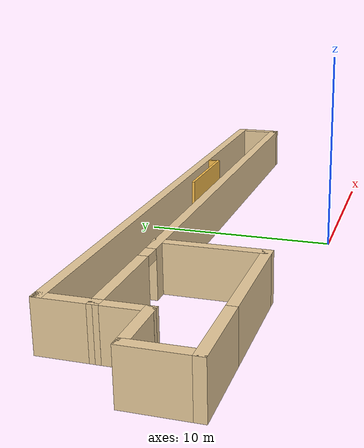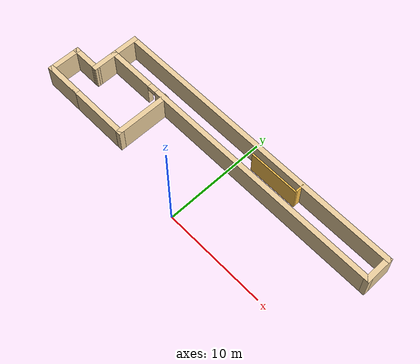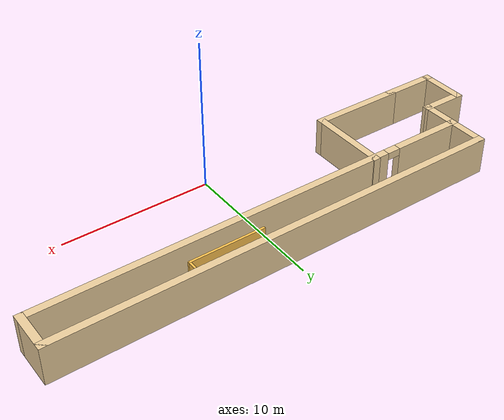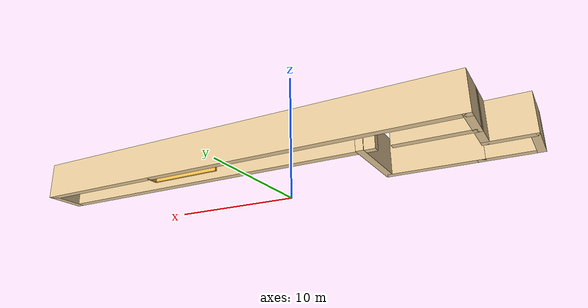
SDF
<?xml version='1.0'?>
<sdf version='1.6'>
  <model name='school_v2'>
    <pose frame=''>-1.03003 5.19888 0 0 -0 0</pose>
    <link name='Wall_48'>
      <collision name='Wall_48_Collision'>
        <geometry>
          <box>
            <size>30.3499 0.5 2.5</size>
          </box>
        </geometry>
        <pose frame=''>0 0 1.25 0 -0 0</pose>
      </collision>
      <visual name='Wall_48_Visual'>
        <pose frame=''>0 0 1.25 0 -0 0</pose>
        <geometry>
          <box>
            <size>30.3499 0.5 2.5</size>
          </box>
        </geometry>
        <material>
          <script>
            <uri>file://media/materials/scripts/gazebo.material</uri>
            <name>Gazebo/Grey</name>
          </script>
          <ambient>0.921569 0.807843 0.615686 1</ambient>
        </material>
        <meta>
          <layer>0</layer>
        </meta>
      </visual>
      <pose frame=''>1.29503 3.69712 0 0 -0 0</pose>
    </link>
    <link name='Wall_51'>
      <collision name='Wall_51_Collision'>
        <geometry>
          <box>
            <size>2.85 0.5 2.5</size>
          </box>
        </geometry>
        <pose frame=''>0 0 1.25 0 -0 0</pose>
      </collision>
      <visual name='Wall_51_Visual'>
        <pose frame=''>0 0 1.25 0 -0 0</pose>
        <geometry>
          <box>
            <size>2.85 0.5 2.5</size>
          </box>
        </geometry>
        <material>
          <script>
            <uri>file://media/materials/scripts/gazebo.material</uri>
            <name>Gazebo/Grey</name>
          </script>
          <ambient>0.921569 0.807843 0.615686 1</ambient>
        </material>
        <meta>
          <layer>0</layer>
        </meta>
      </visual>
      <pose frame=''>-13.63 2.52211 0 0 0 -1.5708</pose>
    </link>
    <link name='Wall_54'>
      <collision name='Wall_54_Collision'>
        <geometry>
          <box>
            <size>2.85 0.5 2.5</size>
          </box>
        </geometry>
        <pose frame=''>0 0 1.25 0 -0 0</pose>
      </collision>
      <visual name='Wall_54_Visual'>
        <pose frame=''>0 0 1.25 0 -0 0</pose>
        <geometry>
          <box>
            <size>2.85 0.5 2.5</size>
          </box>
        </geometry>
        <material>
          <script>
            <uri>file://media/materials/scripts/gazebo.material</uri>
            <name>Gazebo/Grey</name>
          </script>
          <ambient>0.921569 0.807843 0.615686 1</ambient>
        </material>
        <meta>
          <layer>0</layer>
        </meta>
      </visual>
      <pose frame=''>16.22 2.52211 0 0 0 -1.5708</pose>
    </link>
    <link name='Wall_56'>
      <pose frame=''>1.29503 1.34712 0 0 -0 0</pose>
      <visual name='Wall_56_Visual_0'>
        <pose frame=''>-12.6762 0 1.25 0 -0 0</pose>
        <geometry>
          <box>
            <size>4.99765 0.5 2.5</size>
          </box>
        </geometry>
        <material>
          <script>
            <uri>file://media/materials/scripts/gazebo.material</uri>
            <name>Gazebo/Grey</name>
          </script>
          <ambient>0.921569 0.807843 0.615686 1</ambient>
        </material>
        <meta>
          <layer>0</layer>
        </meta>
      </visual>
      <collision name='Wall_56_Collision_0'>
        <geometry>
          <box>
            <size>4.99765 0.5 2.5</size>
          </box>
        </geometry>
        <pose frame=''>-12.6762 0 1.25 0 -0 0</pose>
      </collision>
      <visual name='Wall_56_Visual_1'>
        <pose frame=''>2.94883 0 1.25 0 -0 0</pose>
        <geometry>
          <box>
            <size>24.4523 0.5 2.5</size>
          </box>
        </geometry>
        <material>
          <script>
            <uri>file://media/materials/scripts/gazebo.material</uri>
            <name>Gazebo/Grey</name>
          </script>
          <ambient>0.921569 0.807843 0.615686 1</ambient>
        </material>
        <meta>
          <layer>0</layer>
        </meta>
      </visual>
      <collision name='Wall_56_Collision_1'>
        <geometry>
          <box>
            <size>24.4523 0.5 2.5</size>
          </box>
        </geometry>
        <pose frame=''>2.94883 0 1.25 0 -0 0</pose>
      </collision>
      <visual name='Wall_56_Visual_2'>
        <pose frame=''>-9.72735 0 2.25 0 -0 0</pose>
        <geometry>
          <box>
            <size>0.9 0.5 0.5</size>
          </box>
        </geometry>
        <material>
          <script>
            <uri>file://media/materials/scripts/gazebo.material</uri>
            <name>Gazebo/Grey</name>
          </script>
          <ambient>0.921569 0.807843 0.615686 1</ambient>
        </material>
        <meta>
          <layer>0</layer>
        </meta>
      </visual>
      <collision name='Wall_56_Collision_2'>
        <geometry>
          <box>
            <size>0.9 0.5 0.5</size>
          </box>
        </geometry>
        <pose frame=''>-9.72735 0 2.25 0 -0 0</pose>
      </collision>
    </link>
    <link name='Wall_58'>
      <collision name='Wall_58_Collision'>
        <geometry>
          <box>
            <size>1 0.15 2.5</size>
          </box>
        </geometry>
        <pose frame=''>0 0 1.25 0 -0 0</pose>
      </collision>
      <visual name='Wall_58_Visual'>
        <pose frame=''>0 0 1.25 0 -0 0</pose>
        <geometry>
          <box>
            <size>1 0.15 2.5</size>
          </box>
        </geometry>
        <material>
          <script>
            <uri>file://media/materials/scripts/gazebo.material</uri>
            <name>Gazebo/Grey</name>
          </script>
          <ambient>1 0.764706 0.305882 1</ambient>
        </material>
        <meta>
          <layer>0</layer>
        </meta>
      </visual>
      <pose frame=''>7.21974 3.27251 0 0 0 -1.5708</pose>
    </link>
    <link name='Wall_59'>
      <collision name='Wall_59_Collision'>
        <geometry>
          <box>
            <size>5 0.15 2.5</size>
          </box>
        </geometry>
        <pose frame=''>0 0 1.25 0 -0 0</pose>
      </collision>
      <visual name='Wall_59_Visual'>
        <pose frame=''>0 0 1.25 0 -0 0</pose>
        <geometry>
          <box>
            <size>5 0.15 2.5</size>
          </box>
        </geometry>
        <material>
          <script>
            <uri>file://media/materials/scripts/gazebo.material</uri>
            <name>Gazebo/Grey</name>
          </script>
          <ambient>1 0.764706 0.305882 1</ambient>
        </material>
        <meta>
          <layer>0</layer>
        </meta>
      </visual>
      <pose frame=''>4.79474 2.84751 0 0 -0 3.14159</pose>
    </link>
    <link name='Wall_62'>
      <collision name='Wall_62_Collision'>
        <geometry>
          <box>
            <size>5.60046 0.5 2.5</size>
          </box>
        </geometry>
        <pose frame=''>0 0 1.25 0 -0 0</pose>
      </collision>
      <visual name='Wall_62_Visual'>
        <pose frame=''>0 0 1.25 0 -0 0</pose>
        <geometry>
          <box>
            <size>5.60046 0.5 2.5</size>
          </box>
        </geometry>
        <material>
          <script>
            <uri>file://media/materials/scripts/gazebo.material</uri>
            <name>Gazebo/Grey</name>
          </script>
          <ambient>0.921569 0.807843 0.615686 1</ambient>
        </material>
        <meta>
          <layer>0</layer>
        </meta>
      </visual>
      <pose frame=''>-7.01997 -1.14688 0 0 0 -1.5708</pose>
    </link>
    <link name='Wall_63'>
      <collision name='Wall_63_Collision'>
        <geometry>
          <box>
            <size>6.35013 0.5 2.5</size>
          </box>
        </geometry>
        <pose frame=''>0 0 1.25 0 -0 0</pose>
      </collision>
      <visual name='Wall_63_Visual'>
        <pose frame=''>0 0 1.25 0 -0 0</pose>
        <geometry>
          <box>
            <size>6.35013 0.5 2.5</size>
          </box>
        </geometry>
        <material>
          <script>
            <uri>file://media/materials/scripts/gazebo.material</uri>
            <name>Gazebo/Grey</name>
          </script>
          <ambient>0.921569 0.807843 0.615686 1</ambient>
        </material>
        <meta>
          <layer>0</layer>
        </meta>
      </visual>
      <pose frame=''>-9.94497 -3.69688 0 0 -0 3.14159</pose>
    </link>
    <link name='Wall_64'>
      <collision name='Wall_64_Collision'>
        <geometry>
          <box>
            <size>3.85013 0.5 2.5</size>
          </box>
        </geometry>
        <pose frame=''>0 0 1.25 0 -0 0</pose>
      </collision>
      <visual name='Wall_64_Visual'>
        <pose frame=''>0 0 1.25 0 -0 0</pose>
        <geometry>
          <box>
            <size>3.85013 0.5 2.5</size>
          </box>
        </geometry>
        <material>
          <script>
            <uri>file://media/materials/scripts/gazebo.material</uri>
            <name>Gazebo/Grey</name>
          </script>
          <ambient>0.921569 0.807843 0.615686 1</ambient>
        </material>
        <meta>
          <layer>0</layer>
        </meta>
      </visual>
      <pose frame=''>-14.545 -3.69688 0 0 -0 3.14159</pose>
    </link>
    <link name='Wall_65'>
      <collision name='Wall_65_Collision'>
        <geometry>
          <box>
            <size>3.34954 0.5 2.5</size>
          </box>
        </geometry>
        <pose frame=''>0 0 1.25 0 -0 0</pose>
      </collision>
      <visual name='Wall_65_Visual'>
        <pose frame=''>0 0 1.25 0 -0 0</pose>
        <geometry>
          <box>
            <size>3.34954 0.5 2.5</size>
          </box>
        </geometry>
        <material>
          <script>
            <uri>file://media/materials/scripts/gazebo.material</uri>
            <name>Gazebo/Grey</name>
          </script>
          <ambient>0.921569 0.807843 0.615686 1</ambient>
        </material>
        <meta>
          <layer>0</layer>
        </meta>
      </visual>
      <pose frame=''>-16.22 -2.27189 0 0 -0 1.5708</pose>
    </link>
    <link name='Wall_66'>
      <collision name='Wall_66_Collision'>
        <geometry>
          <box>
            <size>3.09987 0.5 2.5</size>
          </box>
        </geometry>
        <pose frame=''>0 0 1.25 0 -0 0</pose>
      </collision>
      <visual name='Wall_66_Visual'>
        <pose frame=''>0 0 1.25 0 -0 0</pose>
        <geometry>
          <box>
            <size>3.09987 0.5 2.5</size>
          </box>
        </geometry>
        <material>
          <script>
            <uri>file://media/materials/scripts/gazebo.material</uri>
            <name>Gazebo/Grey</name>
          </script>
          <ambient>0.921569 0.807843 0.615686 1</ambient>
        </material>
        <meta>
          <layer>0</layer>
        </meta>
      </visual>
      <pose frame=''>-14.92 -0.846885 0 0 -0 0</pose>
    </link>
    <link name='Wall_67'>
      <collision name='Wall_67_Collision'>
        <geometry>
          <box>
            <size>2.69402 0.5 2.5</size>
          </box>
        </geometry>
        <pose frame=''>0 0 1.25 0 -0 0</pose>
      </collision>
      <visual name='Wall_67_Visual'>
        <pose frame=''>0 0 1.25 0 -0 0</pose>
        <geometry>
          <box>
            <size>2.69402 0.5 2.5</size>
          </box>
        </geometry>
        <material>
          <script>
            <uri>file://media/materials/scripts/gazebo.material</uri>
            <name>Gazebo/Grey</name>
          </script>
          <ambient>0.921569 0.807843 0.615686 1</ambient>
        </material>
        <meta>
          <layer>0</layer>
        </meta>
      </visual>
      <pose frame=''>-13.625 0.250115 0 0 -0 1.57535</pose>
    </link>
    <static>1</static>
  </model>
</sdf>
